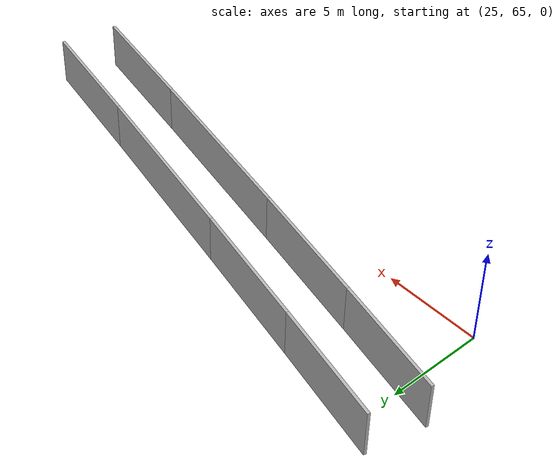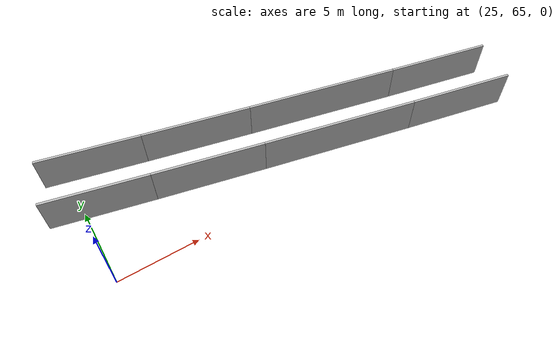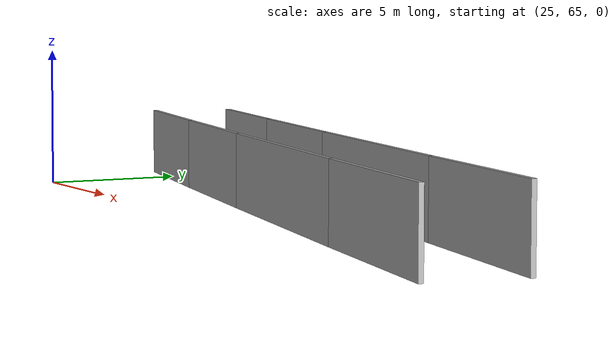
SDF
<?xml version="1.0" ?>
<sdf version="1.6">
  <model name="sps_0103">
    <pose frame="">0 0 0 0 -0 0</pose>
    <static>1</static>
    <self_collide>0</self_collide>
    <allow_auto_disable>0</allow_auto_disable>
    <link name="Wall2704">
      <kinematic>0</kinematic>
      <gravity>1</gravity>
      <self_collide>0</self_collide>
      <collision name="collision">
        <geometry>
          <box>
            <size>6.30811 0.15 2.5</size>
          </box>
        </geometry>
        <pose frame="">0 0 0 0 -0 0</pose>
      </collision>
      <visual name="visual">
        <geometry>
          <box>
            <size>6.30811 0.15 2.5</size>
          </box>
        </geometry>
        <pose frame="">0 0 0 0 -0 0</pose>
        <cast_shadows>1</cast_shadows>
        <transparency>0.0</transparency>
      </visual>
      <pose frame="">26.0345 69.5252 1.25 0 0 -0.218756</pose>
    </link>
    <link name="Wall2705">
      <kinematic>0</kinematic>
      <gravity>1</gravity>
      <self_collide>0</self_collide>
      <collision name="collision">
        <geometry>
          <box>
            <size>6.83292 0.15 2.5</size>
          </box>
        </geometry>
        <pose frame="">0 0 0 0 -0 0</pose>
      </collision>
      <visual name="visual">
        <geometry>
          <box>
            <size>6.83292 0.15 2.5</size>
          </box>
        </geometry>
        <pose frame="">0 0 0 0 -0 0</pose>
        <cast_shadows>1</cast_shadows>
        <transparency>0.0</transparency>
      </visual>
      <pose frame="">32.4535 68.1225 1.25 0 0 -0.211798</pose>
    </link>
    <link name="Wall2706">
      <kinematic>0</kinematic>
      <gravity>1</gravity>
      <self_collide>0</self_collide>
      <collision name="collision">
        <geometry>
          <box>
            <size>9.85257 0.15 2.5</size>
          </box>
        </geometry>
        <pose frame="">0 0 0 0 -0 0</pose>
      </collision>
      <visual name="visual">
        <geometry>
          <box>
            <size>9.85257 0.15 2.5</size>
          </box>
        </geometry>
        <pose frame="">0 0 0 0 -0 0</pose>
        <cast_shadows>1</cast_shadows>
        <transparency>0.0</transparency>
      </visual>
      <pose frame="">40.6164 66.3998 1.25 0 0 -0.20535</pose>
    </link>
    <link name="Wall2707">
      <kinematic>0</kinematic>
      <gravity>1</gravity>
      <self_collide>0</self_collide>
      <collision name="collision">
        <geometry>
          <box>
            <size>6.83163 0.15 2.5</size>
          </box>
        </geometry>
        <pose frame="">0 0 0 0 -0 0</pose>
      </collision>
      <visual name="visual">
        <geometry>
          <box>
            <size>6.83163 0.15 2.5</size>
          </box>
        </geometry>
        <pose frame="">0 0 0 0 -0 0</pose>
        <cast_shadows>1</cast_shadows>
        <transparency>0.0</transparency>
      </visual>
      <pose frame="">48.7891 64.7271 1.25 0 0 -0.196884</pose>
    </link>
    <link name="Wall3547">
      <kinematic>0</kinematic>
      <gravity>1</gravity>
      <self_collide>0</self_collide>
      <collision name="collision">
        <geometry>
          <box>
            <size>6.29173 0.15 2.5</size>
          </box>
        </geometry>
        <pose frame="">0 0 0 0 -0 0</pose>
      </collision>
      <visual name="visual">
        <geometry>
          <box>
            <size>6.29173 0.15 2.5</size>
          </box>
        </geometry>
        <pose frame="">0 0 0 0 -0 0</pose>
        <cast_shadows>1</cast_shadows>
        <transparency>0.0</transparency>
      </visual>
      <pose frame="">26.6833 72.4542 1.25 0 0 -0.218758</pose>
    </link>
    <link name="Wall3548">
      <kinematic>0</kinematic>
      <gravity>1</gravity>
      <self_collide>0</self_collide>
      <collision name="collision">
        <geometry>
          <box>
            <size>6.81288 0.15 2.5</size>
          </box>
        </geometry>
        <pose frame="">0 0 0 0 -0 0</pose>
      </collision>
      <visual name="visual">
        <geometry>
          <box>
            <size>6.81288 0.15 2.5</size>
          </box>
        </geometry>
        <pose frame="">0 0 0 0 -0 0</pose>
        <cast_shadows>1</cast_shadows>
        <transparency>0.0</transparency>
      </visual>
      <pose frame="">33.0846 71.0554 1.25 0 0 -0.211798</pose>
    </link>
    <link name="Wall3549">
      <kinematic>0</kinematic>
      <gravity>1</gravity>
      <self_collide>0</self_collide>
      <collision name="collision">
        <geometry>
          <box>
            <size>9.83012 0.15 2.5</size>
          </box>
        </geometry>
        <pose frame="">0 0 0 0 -0 0</pose>
      </collision>
      <visual name="visual">
        <geometry>
          <box>
            <size>9.83012 0.15 2.5</size>
          </box>
        </geometry>
        <pose frame="">0 0 0 0 -0 0</pose>
        <cast_shadows>1</cast_shadows>
        <transparency>0.0</transparency>
      </visual>
      <pose frame="">41.2267 69.3371 1.25 0 0 -0.205343</pose>
    </link>
    <link name="Wall3550">
      <kinematic>0</kinematic>
      <gravity>1</gravity>
      <self_collide>0</self_collide>
      <collision name="collision">
        <geometry>
          <box>
            <size>6.8128 0.15 2.5</size>
          </box>
        </geometry>
        <pose frame="">0 0 0 0 -0 0</pose>
      </collision>
      <visual name="visual">
        <geometry>
          <box>
            <size>6.8128 0.15 2.5</size>
          </box>
        </geometry>
        <pose frame="">0 0 0 0 -0 0</pose>
        <cast_shadows>1</cast_shadows>
        <transparency>0.0</transparency>
      </visual>
      <pose frame="">49.3791 67.6685 1.25 0 0 -0.196905</pose>
    </link>
  </model>
</sdf>
